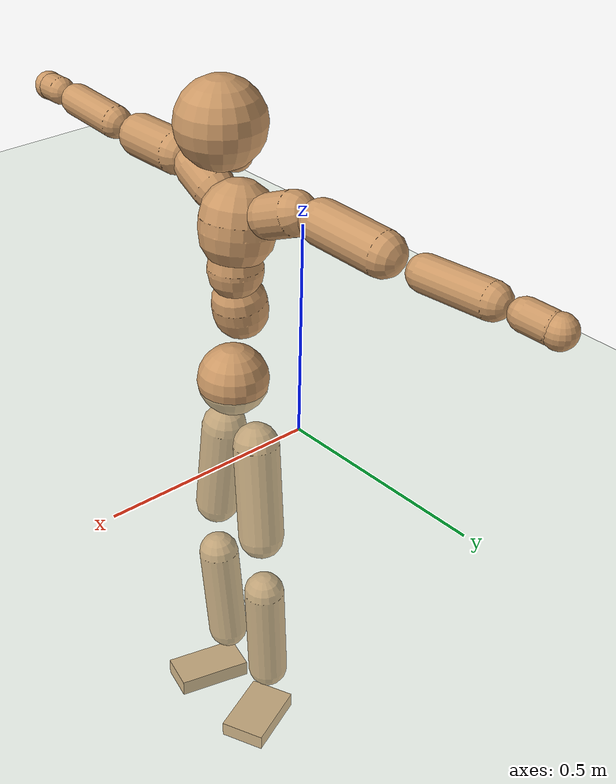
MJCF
<mujoco model="humanoid">
  <compiler coordinate="local"/>
  <default>
    <joint damping="0.0" armature="0.01" stiffness="0.0" limited="true"/>
    <geom conaffinity="1" condim="3" contype="7" margin="0.001" rgba="0.8 0.6 .4 1"/>
  </default>
  <asset>
    <texture type="skybox" builtin="gradient" rgb1=".4 .5 .6" rgb2="0 0 0" width="100" height="100"/>
    <texture builtin="flat" height="1278" mark="cross" markrgb="1 1 1" name="texgeom" random="0.01" rgb1="0.8 0.6 0.4" rgb2="0.8 0.6 0.4" type="cube" width="127"/>
    <texture builtin="checker" height="100" name="texplane" rgb1="0 0 0" rgb2="0.8 0.8 0.8" type="2d" width="100"/>
    <material name="MatPlane" reflectance="0.5" shininess="1" specular="1" texrepeat="60 60" texture="texplane"/>
    <material name="geom" texture="texgeom" texuniform="true"/>
  </asset>
  <worldbody>
    <light cutoff="100" diffuse="1 1 1" dir="-0 0 -1.3" directional="true" exponent="1" pos="0 0 1.3" specular=".1 .1 .1"/>
    <geom conaffinity="1" condim="3" name="floor" pos="0 0 0" rgba="0.8 0.9 0.8 1" size="100 100 .2" type="plane" material="MatPlane"/>
    <body name="Pelvis" pos="-0.0039 -0.2372 0.0182">
      <freejoint name="Pelvis"/>
      <geom type="sphere" contype="1" conaffinity="1" density="500" size="0.0855" pos="0.0000 0.0000 0.0000" name="Pelvis"/>
      <body name="L_Hip" pos="-0.0216 0.0509 -0.0804">
        <joint name="L_Hip_x" type="hinge" pos="0 0 0" axis="1 0 0" stiffness="800" damping="80" armature="0.02" range="-180.0000 180.0000"/>
        <joint name="L_Hip_y" type="hinge" pos="0 0 0" axis="0 1 0" stiffness="800" damping="80" armature="0.02" range="-180.0000 180.0000"/>
        <joint name="L_Hip_z" type="hinge" pos="0 0 0" axis="0 0 1" stiffness="800" damping="80" armature="0.02" range="-180.0000 180.0000"/>
        <geom type="capsule" contype="1" conaffinity="1" density="500" fromto="0.0034 0.0105 -0.0834 0.0136 0.0419 -0.3337" size="0.0562" name="L_Hip"/>
        <body name="L_Knee" pos="0.017 0.0524 -0.4171">
          <joint name="L_Knee_x" type="hinge" pos="0 0 0" axis="1 0 0" stiffness="800" damping="80" armature="0.02" range="-180.0000 180.0000"/>
          <joint name="L_Knee_y" type="hinge" pos="0 0 0" axis="0 1 0" stiffness="800" damping="80" armature="0.02" range="-180.0000 180.0000"/>
          <joint name="L_Knee_z" type="hinge" pos="0 0 0" axis="0 0 1" stiffness="800" damping="80" armature="0.02" range="-180.0000 180.0000"/>
          <geom type="capsule" contype="1" conaffinity="1" density="500" fromto="-0.0064 -0.0025 -0.0907 -0.0256 -0.0100 -0.3628" size="0.0505" name="L_Knee"/>
          <body name="L_Ankle" pos="-0.0321 -0.0125 -0.4535">
            <joint name="L_Ankle_x" type="hinge" pos="0 0 0" axis="1 0 0" stiffness="800" damping="80" armature="0.02" range="-180.0000 180.0000"/>
            <joint name="L_Ankle_y" type="hinge" pos="0 0 0" axis="0 1 0" stiffness="800" damping="80" armature="0.02" range="-180.0000 180.0000"/>
            <joint name="L_Ankle_z" type="hinge" pos="0 0 0" axis="0 0 1" stiffness="800" damping="80" armature="0.02" range="-180.0000 180.0000"/>
            <geom type="box" contype="1" conaffinity="1" density="500" pos="0.0619 0.0263 -0.0323" size="0.0886 0.0565 0.0197" quat="0.9799 0.0000 0.0000 0.1996" name="L_Ankle"/>
            <body name="L_Toe" pos="0.1239 0.0526 -0.0646">
              <joint name="L_Toe_x" type="hinge" pos="0 0 0" axis="1 0 0" stiffness="500" damping="50" armature="0.02" range="-180.0000 180.0000"/>
              <joint name="L_Toe_y" type="hinge" pos="0 0 0" axis="0 1 0" stiffness="500" damping="50" armature="0.02" range="-180.0000 180.0000"/>
              <joint name="L_Toe_z" type="hinge" pos="0 0 0" axis="0 0 1" stiffness="500" damping="50" armature="0.02" range="-180.0000 180.0000"/>
              <geom type="box" contype="1" conaffinity="1" density="500" pos="0.0000 0.0000 0.0346" size="0.001 0.0027 0.0011" quat="0.9791 0.0000 0.0000 0.2033" name="L_Toe"/>
            </body>
          </body>
        </body>
      </body>
      <body name="R_Hip" pos="-0.0195 -0.051 -0.0883">
        <joint name="R_Hip_x" type="hinge" pos="0 0 0" axis="1 0 0" stiffness="800" damping="80" armature="0.02" range="-180.0000 180.0000"/>
        <joint name="R_Hip_y" type="hinge" pos="0 0 0" axis="0 1 0" stiffness="800" damping="80" armature="0.02" range="-180.0000 180.0000"/>
        <joint name="R_Hip_z" type="hinge" pos="0 0 0" axis="0 0 1" stiffness="800" damping="80" armature="0.02" range="-180.0000 180.0000"/>
        <geom type="capsule" contype="1" conaffinity="1" density="500" fromto="0.0005 -0.0102 -0.0818 0.0020 -0.0407 -0.3274" size="0.0552" name="R_Hip"/>
        <body name="R_Knee" pos="0.0024 -0.0509 -0.4092">
          <joint name="R_Knee_x" type="hinge" pos="0 0 0" axis="1 0 0" stiffness="800" damping="80" armature="0.02" range="-180.0000 180.0000"/>
          <joint name="R_Knee_y" type="hinge" pos="0 0 0" axis="0 1 0" stiffness="800" damping="80" armature="0.02" range="-180.0000 180.0000"/>
          <joint name="R_Knee_z" type="hinge" pos="0 0 0" axis="0 0 1" stiffness="800" damping="80" armature="0.02" range="-180.0000 180.0000"/>
          <geom type="capsule" contype="1" conaffinity="1" density="500" fromto="-0.0060 0.0037 -0.0891 -0.0239 0.0148 -0.3565" size="0.0511" name="R_Knee"/>
          <body name="R_Ankle" pos="-0.0299 0.0186 -0.4456">
            <joint name="R_Ankle_x" type="hinge" pos="0 0 0" axis="1 0 0" stiffness="800" damping="80" armature="0.02" range="-180.0000 180.0000"/>
            <joint name="R_Ankle_y" type="hinge" pos="0 0 0" axis="0 1 0" stiffness="800" damping="80" armature="0.02" range="-180.0000 180.0000"/>
            <joint name="R_Ankle_z" type="hinge" pos="0 0 0" axis="0 0 1" stiffness="800" damping="80" armature="0.02" range="-180.0000 180.0000"/>
            <geom type="box" contype="1" conaffinity="1" density="500" pos="0.0669 -0.0174 -0.0331" size="0.0941 0.049 0.0216" quat="0.9919 0.0000 0.0000 -0.1268" name="R_Ankle"/>
            <body name="R_Toe" pos="0.1338 -0.0348 -0.0663">
              <joint name="R_Toe_x" type="hinge" pos="0 0 0" axis="1 0 0" stiffness="500" damping="50" armature="0.02" range="-180.0000 180.0000"/>
              <joint name="R_Toe_y" type="hinge" pos="0 0 0" axis="0 1 0" stiffness="500" damping="50" armature="0.02" range="-180.0000 180.0000"/>
              <joint name="R_Toe_z" type="hinge" pos="0 0 0" axis="0 0 1" stiffness="500" damping="50" armature="0.02" range="-180.0000 180.0000"/>
              <geom type="box" contype="1" conaffinity="1" density="500" pos="0.0000 0.0000 0.0343" size="0.001 0.0024 0.0011" quat="0.9930 0.0000 0.0000 -0.1181" name="R_Toe"/>
            </body>
          </body>
        </body>
      </body>
      <body name="Torso" pos="-0.0307 0.0044 0.1193">
        <joint name="Torso_x" type="hinge" pos="0 0 0" axis="1 0 0" stiffness="1000" damping="100" armature="0.02" range="-180.0000 180.0000"/>
        <joint name="Torso_y" type="hinge" pos="0 0 0" axis="0 1 0" stiffness="1000" damping="100" armature="0.02" range="-180.0000 180.0000"/>
        <joint name="Torso_z" type="hinge" pos="0 0 0" axis="0 0 1" stiffness="1000" damping="100" armature="0.02" range="-180.0000 180.0000"/>
        <geom type="capsule" contype="1" conaffinity="1" density="500" fromto="0.0168 0.0030 0.0851 0.0112 0.0020 0.0567" size="0.064449" name="Torso"/>
        <body name="Spine" pos="0.028 0.005 0.1418">
          <joint name="Spine_x" type="hinge" pos="0 0 0" axis="1 0 0" stiffness="1000" damping="100" armature="0.02" range="-180.0000 180.0000"/>
          <joint name="Spine_y" type="hinge" pos="0 0 0" axis="0 1 0" stiffness="1000" damping="100" armature="0.02" range="-180.0000 180.0000"/>
          <joint name="Spine_z" type="hinge" pos="0 0 0" axis="0 0 1" stiffness="1000" damping="100" armature="0.02" range="-180.0000 180.0000"/>
          <geom type="capsule" contype="1" conaffinity="1" density="500" fromto="-0.0007 -0.0009 0.0346 -0.0005 -0.0006 0.0231" size="0.064542" name="Spine"/>
          <body name="Chest" pos="-0.0012 -0.0015 0.0577">
            <joint name="Chest_x" type="hinge" pos="0 0 0" axis="1 0 0" stiffness="1000" damping="100" armature="0.02" range="-180.0000 180.0000"/>
            <joint name="Chest_y" type="hinge" pos="0 0 0" axis="0 1 0" stiffness="1000" damping="100" armature="0.02" range="-180.0000 180.0000"/>
            <joint name="Chest_z" type="hinge" pos="0 0 0" axis="0 0 1" stiffness="1000" damping="100" armature="0.02" range="-180.0000 180.0000"/>
            <geom type="capsule" contype="1" conaffinity="1" density="500" fromto="-0.0127 -0.0049 0.0884 -0.0084 -0.0033 0.0589" size="0.088629" name="Chest"/>
            <body name="Neck" pos="-0.0217 -0.0132 0.216">
              <joint name="Neck_x" type="hinge" pos="0 0 0" axis="1 0 0" stiffness="500" damping="50" armature="0.02" range="-180.0000 180.0000"/>
              <joint name="Neck_y" type="hinge" pos="0 0 0" axis="0 1 0" stiffness="500" damping="50" armature="0.02" range="-180.0000 180.0000"/>
              <joint name="Neck_z" type="hinge" pos="0 0 0" axis="0 0 1" stiffness="500" damping="50" armature="0.02" range="-180.0000 180.0000"/>
              <geom type="capsule" contype="1" conaffinity="1" density="500" fromto="0.0110 0.0021 0.0205 0.0439 0.0086 0.0820" size="0.040734" name="Neck"/>
              <body name="Head" pos="0.0549 0.0107 0.1025">
                <joint name="Head_x" type="hinge" pos="0 0 0" axis="1 0 0" stiffness="500" damping="50" armature="0.02" range="-180.0000 180.0000"/>
                <joint name="Head_y" type="hinge" pos="0 0 0" axis="0 1 0" stiffness="500" damping="50" armature="0.02" range="-180.0000 180.0000"/>
                <joint name="Head_z" type="hinge" pos="0 0 0" axis="0 0 1" stiffness="500" damping="50" armature="0.02" range="-180.0000 180.0000"/>
                <geom type="sphere" contype="1" conaffinity="1" density="500" size="0.1020" pos="0.0000 0.0000 0.0000" name="Head"/>
              </body>
            </body>
            <body name="L_Thorax" pos="-0.0185 0.0689 0.1141">
              <joint name="L_Thorax_x" type="hinge" pos="0 0 0" axis="1 0 0" stiffness="500" damping="50" armature="0.02" range="-180.0000 180.0000"/>
              <joint name="L_Thorax_y" type="hinge" pos="0 0 0" axis="0 1 0" stiffness="500" damping="50" armature="0.02" range="-180.0000 180.0000"/>
              <joint name="L_Thorax_z" type="hinge" pos="0 0 0" axis="0 0 1" stiffness="500" damping="50" armature="0.02" range="-180.0000 180.0000"/>
              <geom type="capsule" contype="1" conaffinity="1" density="500" fromto="-0.0026 0.0235 0.0100 -0.0106 0.0939 0.0398" size="0.0508" name="L_Thorax"/>
              <body name="L_Shoulder" pos="-0.0132 0.1174 0.0498">
                <joint name="L_Shoulder_x" type="hinge" pos="0 0 0" axis="1 0 0" stiffness="500" damping="50" armature="0.02" range="-720.0000 720.0000"/>
                <joint name="L_Shoulder_y" type="hinge" pos="0 0 0" axis="0 1 0" stiffness="500" damping="50" armature="0.02" range="-720.0000 720.0000"/>
                <joint name="L_Shoulder_z" type="hinge" pos="0 0 0" axis="0 0 1" stiffness="500" damping="50" armature="0.02" range="-720.0000 720.0000"/>
                <geom type="capsule" contype="1" conaffinity="1" density="500" fromto="-0.0042 0.0550 -0.0041 -0.0169 0.2200 -0.0163" size="0.0511" name="L_Shoulder"/>
                <body name="L_Elbow" pos="-0.0211 0.2749 -0.0204">
                  <joint name="L_Elbow_x" type="hinge" pos="0 0 0" axis="1 0 0" stiffness="500" damping="50" armature="0.02" range="-720.0000 720.0000"/>
                  <joint name="L_Elbow_y" type="hinge" pos="0 0 0" axis="0 1 0" stiffness="500" damping="50" armature="0.02" range="-720.0000 720.0000"/>
                  <joint name="L_Elbow_z" type="hinge" pos="0 0 0" axis="0 0 1" stiffness="500" damping="50" armature="0.02" range="-720.0000 720.0000"/>
                  <geom type="capsule" contype="1" conaffinity="1" density="500" fromto="-0.0018 0.0560 0.0027 -0.0071 0.2240 0.0107" size="0.04" name="L_Elbow"/>
                  <body name="L_Wrist" pos="-0.0089 0.28 0.0134">
                    <joint name="L_Wrist_x" type="hinge" pos="0 0 0" axis="1 0 0" stiffness="300" damping="30" armature="0.02" range="-180.0000 180.0000"/>
                    <joint name="L_Wrist_y" type="hinge" pos="0 0 0" axis="0 1 0" stiffness="300" damping="30" armature="0.02" range="-180.0000 180.0000"/>
                    <joint name="L_Wrist_z" type="hinge" pos="0 0 0" axis="0 0 1" stiffness="300" damping="30" armature="0.02" range="-180.0000 180.0000"/>
                    <geom type="capsule" contype="1" conaffinity="1" density="500" fromto="-0.0033 0.0179 -0.0022 -0.0131 0.0716 -0.0086" size="0.0345" name="L_Wrist"/>
                    <body name="L_Hand" pos="-0.0164 0.0894 -0.0108">
                      <joint name="L_Hand_x" type="hinge" pos="0 0 0" axis="1 0 0" stiffness="300" damping="30" armature="0.02" range="-180.0000 180.0000"/>
                      <joint name="L_Hand_y" type="hinge" pos="0 0 0" axis="0 1 0" stiffness="300" damping="30" armature="0.02" range="-180.0000 180.0000"/>
                      <joint name="L_Hand_z" type="hinge" pos="0 0 0" axis="0 0 1" stiffness="300" damping="30" armature="0.02" range="-180.0000 180.0000"/>
                      <geom type="sphere" contype="1" conaffinity="1" density="500" size="0.0365" pos="0.0000 0.0000 0.0000" name="L_Hand"/>
                    </body>
                  </body>
                </body>
              </body>
            </body>
            <body name="R_Thorax" pos="-0.0231 -0.0804 0.1119">
              <joint name="R_Thorax_x" type="hinge" pos="0 0 0" axis="1 0 0" stiffness="500" damping="50" armature="0.02" range="-180.0000 180.0000"/>
              <joint name="R_Thorax_y" type="hinge" pos="0 0 0" axis="0 1 0" stiffness="500" damping="50" armature="0.02" range="-180.0000 180.0000"/>
              <joint name="R_Thorax_z" type="hinge" pos="0 0 0" axis="0 0 1" stiffness="500" damping="50" armature="0.02" range="-180.0000 180.0000"/>
              <geom type="capsule" contype="1" conaffinity="1" density="500" fromto="-0.0008 -0.0217 0.0102 -0.0032 -0.0870 0.0407" size="0.0512" name="R_Thorax"/>
              <body name="R_Shoulder" pos="-0.004 -0.1087 0.0509">
                <joint name="R_Shoulder_x" type="hinge" pos="0 0 0" axis="1 0 0" stiffness="500" damping="50" armature="0.02" range="-720.0000 720.0000"/>
                <joint name="R_Shoulder_y" type="hinge" pos="0 0 0" axis="0 1 0" stiffness="500" damping="50" armature="0.02" range="-720.0000 720.0000"/>
                <joint name="R_Shoulder_z" type="hinge" pos="0 0 0" axis="0 0 1" stiffness="500" damping="50" armature="0.02" range="-720.0000 720.0000"/>
                <geom type="capsule" contype="1" conaffinity="1" density="500" fromto="-0.0053 -0.0554 -0.0046 -0.0211 -0.2216 -0.0184" size="0.0525" name="R_Shoulder"/>
                <body name="R_Elbow" pos="-0.0264 -0.277 -0.023">
                  <joint name="R_Elbow_x" type="hinge" pos="0 0 0" axis="1 0 0" stiffness="500" damping="50" armature="0.02" range="-720.0000 720.0000"/>
                  <joint name="R_Elbow_y" type="hinge" pos="0 0 0" axis="0 1 0" stiffness="500" damping="50" armature="0.02" range="-720.0000 720.0000"/>
                  <joint name="R_Elbow_z" type="hinge" pos="0 0 0" axis="0 0 1" stiffness="500" damping="50" armature="0.02" range="-720.0000 720.0000"/>
                  <geom type="capsule" contype="1" conaffinity="1" density="500" fromto="-0.0011 -0.0572 0.0022 -0.0045 -0.2287 0.0087" size="0.0404" name="R_Elbow"/>
                  <body name="R_Wrist" pos="-0.0056 -0.2859 0.0109">
                    <joint name="R_Wrist_x" type="hinge" pos="0 0 0" axis="1 0 0" stiffness="300" damping="30" armature="0.02" range="-180.0000 180.0000"/>
                    <joint name="R_Wrist_y" type="hinge" pos="0 0 0" axis="0 1 0" stiffness="300" damping="30" armature="0.02" range="-180.0000 180.0000"/>
                    <joint name="R_Wrist_z" type="hinge" pos="0 0 0" axis="0 0 1" stiffness="300" damping="30" armature="0.02" range="-180.0000 180.0000"/>
                    <geom type="capsule" contype="1" conaffinity="1" density="500" fromto="-0.0022 -0.0181 -0.0017 -0.0087 -0.0723 -0.0069" size="0.0346" name="R_Wrist"/>
                    <body name="R_Hand" pos="-0.0108 -0.0904 -0.0086">
                      <joint name="R_Hand_x" type="hinge" pos="0 0 0" axis="1 0 0" stiffness="300" damping="30" armature="0.02" range="-180.0000 180.0000"/>
                      <joint name="R_Hand_y" type="hinge" pos="0 0 0" axis="0 1 0" stiffness="300" damping="30" armature="0.02" range="-180.0000 180.0000"/>
                      <joint name="R_Hand_z" type="hinge" pos="0 0 0" axis="0 0 1" stiffness="300" damping="30" armature="0.02" range="-180.0000 180.0000"/>
                      <geom type="sphere" contype="1" conaffinity="1" density="500" size="0.0365" pos="0.0000 0.0000 0.0000" name="R_Hand"/>
                    </body>
                  </body>
                </body>
              </body>
            </body>
          </body>
        </body>
      </body>
    </body>
  </worldbody>
  <actuator>
    <motor name="L_Hip_x" joint="L_Hip_x" gear="500"/>
    <motor name="L_Hip_y" joint="L_Hip_y" gear="500"/>
    <motor name="L_Hip_z" joint="L_Hip_z" gear="500"/>
    <motor name="L_Knee_x" joint="L_Knee_x" gear="500"/>
    <motor name="L_Knee_y" joint="L_Knee_y" gear="500"/>
    <motor name="L_Knee_z" joint="L_Knee_z" gear="500"/>
    <motor name="L_Ankle_x" joint="L_Ankle_x" gear="500"/>
    <motor name="L_Ankle_y" joint="L_Ankle_y" gear="500"/>
    <motor name="L_Ankle_z" joint="L_Ankle_z" gear="500"/>
    <motor name="L_Toe_x" joint="L_Toe_x" gear="500"/>
    <motor name="L_Toe_y" joint="L_Toe_y" gear="500"/>
    <motor name="L_Toe_z" joint="L_Toe_z" gear="500"/>
    <motor name="R_Hip_x" joint="R_Hip_x" gear="500"/>
    <motor name="R_Hip_y" joint="R_Hip_y" gear="500"/>
    <motor name="R_Hip_z" joint="R_Hip_z" gear="500"/>
    <motor name="R_Knee_x" joint="R_Knee_x" gear="500"/>
    <motor name="R_Knee_y" joint="R_Knee_y" gear="500"/>
    <motor name="R_Knee_z" joint="R_Knee_z" gear="500"/>
    <motor name="R_Ankle_x" joint="R_Ankle_x" gear="500"/>
    <motor name="R_Ankle_y" joint="R_Ankle_y" gear="500"/>
    <motor name="R_Ankle_z" joint="R_Ankle_z" gear="500"/>
    <motor name="R_Toe_x" joint="R_Toe_x" gear="500"/>
    <motor name="R_Toe_y" joint="R_Toe_y" gear="500"/>
    <motor name="R_Toe_z" joint="R_Toe_z" gear="500"/>
    <motor name="Torso_x" joint="Torso_x" gear="500"/>
    <motor name="Torso_y" joint="Torso_y" gear="500"/>
    <motor name="Torso_z" joint="Torso_z" gear="500"/>
    <motor name="Spine_x" joint="Spine_x" gear="500"/>
    <motor name="Spine_y" joint="Spine_y" gear="500"/>
    <motor name="Spine_z" joint="Spine_z" gear="500"/>
    <motor name="Chest_x" joint="Chest_x" gear="500"/>
    <motor name="Chest_y" joint="Chest_y" gear="500"/>
    <motor name="Chest_z" joint="Chest_z" gear="500"/>
    <motor name="Neck_x" joint="Neck_x" gear="500"/>
    <motor name="Neck_y" joint="Neck_y" gear="500"/>
    <motor name="Neck_z" joint="Neck_z" gear="500"/>
    <motor name="Head_x" joint="Head_x" gear="500"/>
    <motor name="Head_y" joint="Head_y" gear="500"/>
    <motor name="Head_z" joint="Head_z" gear="500"/>
    <motor name="L_Thorax_x" joint="L_Thorax_x" gear="500"/>
    <motor name="L_Thorax_y" joint="L_Thorax_y" gear="500"/>
    <motor name="L_Thorax_z" joint="L_Thorax_z" gear="500"/>
    <motor name="L_Shoulder_x" joint="L_Shoulder_x" gear="500"/>
    <motor name="L_Shoulder_y" joint="L_Shoulder_y" gear="500"/>
    <motor name="L_Shoulder_z" joint="L_Shoulder_z" gear="500"/>
    <motor name="L_Elbow_x" joint="L_Elbow_x" gear="500"/>
    <motor name="L_Elbow_y" joint="L_Elbow_y" gear="500"/>
    <motor name="L_Elbow_z" joint="L_Elbow_z" gear="500"/>
    <motor name="L_Wrist_x" joint="L_Wrist_x" gear="500"/>
    <motor name="L_Wrist_y" joint="L_Wrist_y" gear="500"/>
    <motor name="L_Wrist_z" joint="L_Wrist_z" gear="500"/>
    <motor name="L_Hand_x" joint="L_Hand_x" gear="500"/>
    <motor name="L_Hand_y" joint="L_Hand_y" gear="500"/>
    <motor name="L_Hand_z" joint="L_Hand_z" gear="500"/>
    <motor name="R_Thorax_x" joint="R_Thorax_x" gear="500"/>
    <motor name="R_Thorax_y" joint="R_Thorax_y" gear="500"/>
    <motor name="R_Thorax_z" joint="R_Thorax_z" gear="500"/>
    <motor name="R_Shoulder_x" joint="R_Shoulder_x" gear="500"/>
    <motor name="R_Shoulder_y" joint="R_Shoulder_y" gear="500"/>
    <motor name="R_Shoulder_z" joint="R_Shoulder_z" gear="500"/>
    <motor name="R_Elbow_x" joint="R_Elbow_x" gear="500"/>
    <motor name="R_Elbow_y" joint="R_Elbow_y" gear="500"/>
    <motor name="R_Elbow_z" joint="R_Elbow_z" gear="500"/>
    <motor name="R_Wrist_x" joint="R_Wrist_x" gear="500"/>
    <motor name="R_Wrist_y" joint="R_Wrist_y" gear="500"/>
    <motor name="R_Wrist_z" joint="R_Wrist_z" gear="500"/>
    <motor name="R_Hand_x" joint="R_Hand_x" gear="500"/>
    <motor name="R_Hand_y" joint="R_Hand_y" gear="500"/>
    <motor name="R_Hand_z" joint="R_Hand_z" gear="500"/>
  </actuator>
  <contact>
    <exclude body1="Torso" body2="Chest"/>
    <exclude body1="Head" body2="Chest"/>
    <exclude body1="R_Knee" body2="R_Toe"/>
    <exclude body1="R_Knee" body2="L_Ankle"/>
    <exclude body1="R_Knee" body2="L_Toe"/>
    <exclude body1="L_Knee" body2="L_Toe"/>
    <exclude body1="L_Knee" body2="R_Ankle"/>
    <exclude body1="L_Knee" body2="R_Toe"/>
    <exclude body1="L_Shoulder" body2="Chest"/>
    <exclude body1="R_Shoulder" body2="Chest"/>
  </contact>
  <sensor/>
  <size njmax="700" nconmax="700"/>
</mujoco>
